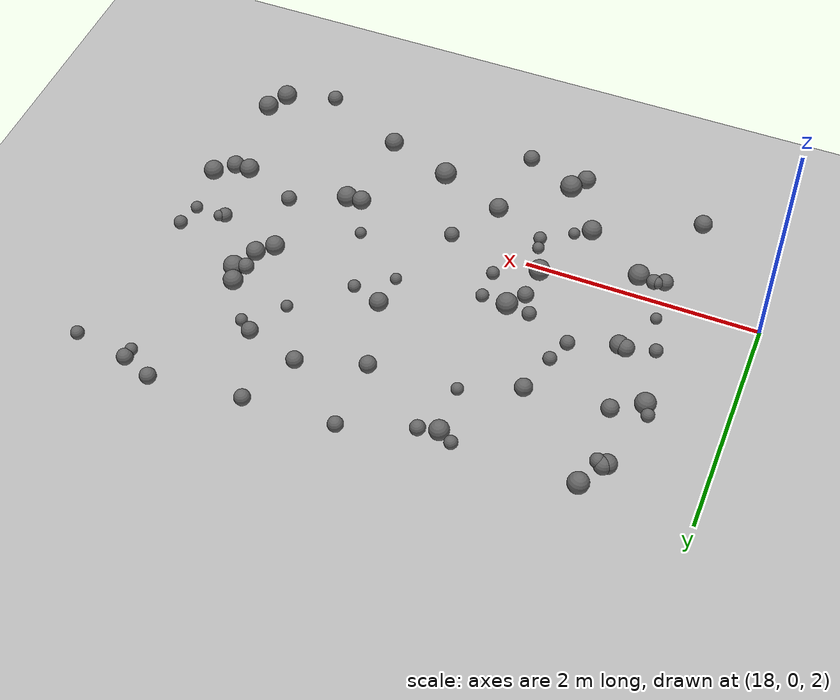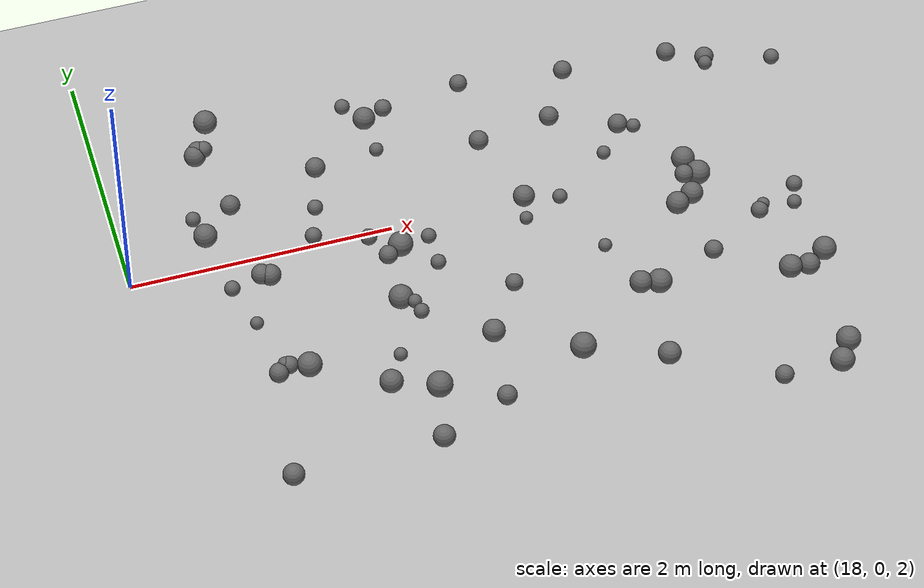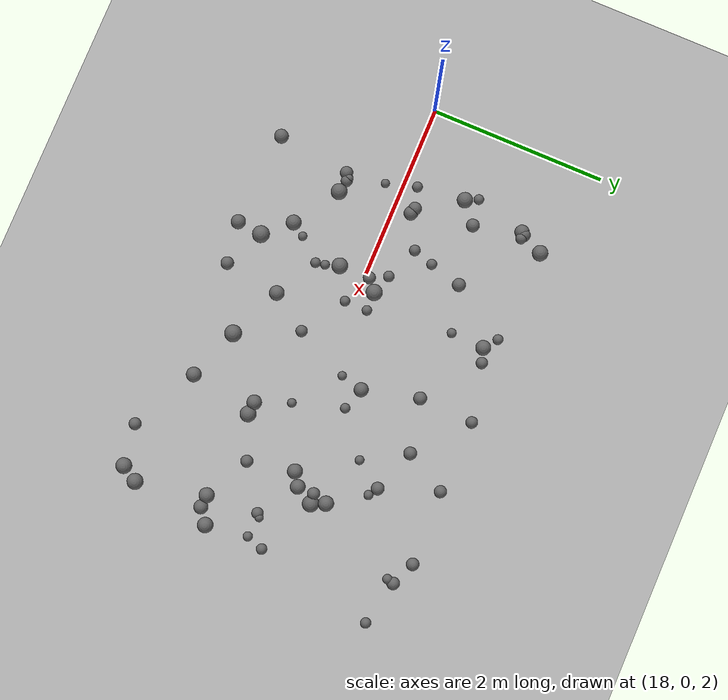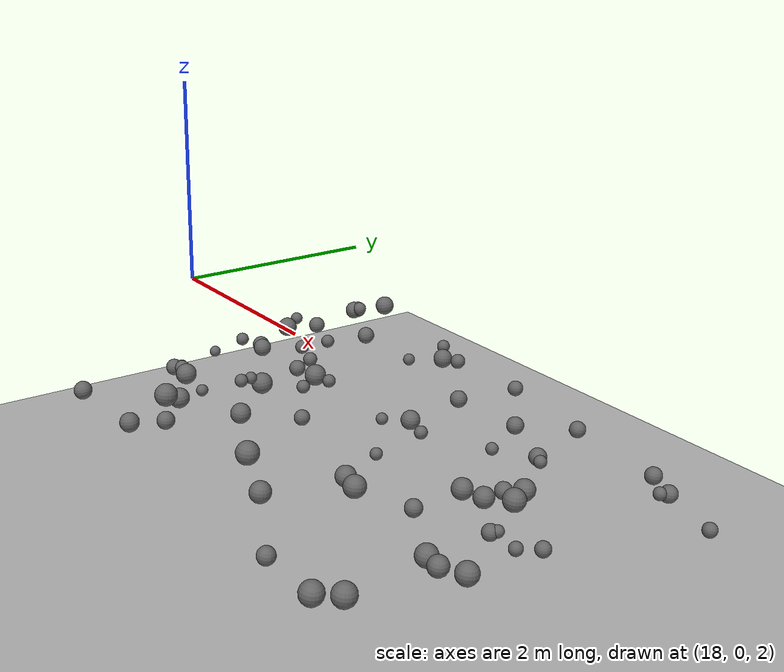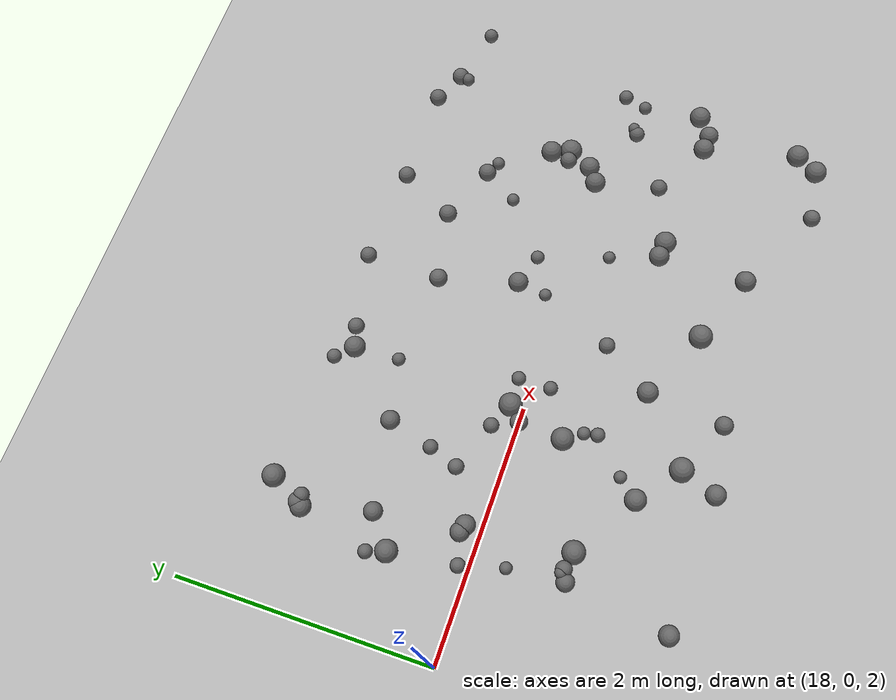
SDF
<sdf version="1.8">
 <world name="extreme_disturbance_parkour">
  <model name="ground_plane">
   <static>true</static>
   <link name="link">
    <collision name="collision">
     <geometry><plane><normal>0 0 1</normal><size>100 100</size></plane></geometry>
     <surface><friction><ode><mu>1.5</mu><mu2>1.5</mu2></ode></friction></surface>
    </collision>
    <visual name="visual">
     <geometry><plane><normal>0 0 1</normal><size>100 100</size></plane></geometry>
     <material><ambient>0.7 0.7 0.7 1</ambient><diffuse>0.7 0.7 0.7 1</diffuse></material>
    </visual>
   </link>
  </model>
  <model name="stone_120">
   <static>true</static>
   <pose>18.8394 1.4577 1.6213 0.0700 -0.1000 0.0000</pose>
   <link name="link">
    <collision name="collision">
     <geometry><sphere><radius>0.0782</radius></sphere></geometry>
     <surface><friction><ode><mu>100.0</mu><mu2>100.0</mu2></ode></friction></surface>
    </collision>
    <visual name="visual">
     <geometry><sphere><radius>0.0782</radius></sphere></geometry>
     <material><ambient>0.3 0.3 0.3 1</ambient><diffuse>0.4 0.4 0.4 1</diffuse></material>
    </visual>
   </link>
  </model>
  <model name="stone_123">
   <static>true</static>
   <pose>19.0907 0.1744 1.5520 0.0700 -0.1000 0.0000</pose>
   <link name="link">
    <collision name="collision">
     <geometry><sphere><radius>0.0824</radius></sphere></geometry>
     <surface><friction><ode><mu>100.0</mu><mu2>100.0</mu2></ode></friction></surface>
    </collision>
    <visual name="visual">
     <geometry><sphere><radius>0.0824</radius></sphere></geometry>
     <material><ambient>0.3 0.3 0.3 1</ambient><diffuse>0.4 0.4 0.4 1</diffuse></material>
    </visual>
   </link>
  </model>
  <model name="stone_127">
   <static>true</static>
   <pose>19.6629 0.9989 1.6807 0.0700 -0.1000 0.0000</pose>
   <link name="link">
    <collision name="collision">
     <geometry><sphere><radius>0.0776</radius></sphere></geometry>
     <surface><friction><ode><mu>100.0</mu><mu2>100.0</mu2></ode></friction></surface>
    </collision>
    <visual name="visual">
     <geometry><sphere><radius>0.0776</radius></sphere></geometry>
     <material><ambient>0.3 0.3 0.3 1</ambient><diffuse>0.4 0.4 0.4 1</diffuse></material>
    </visual>
   </link>
  </model>
  <model name="stone_135">
   <static>true</static>
   <pose>19.0219 -0.6539 1.5021 0.0700 -0.1000 0.0000</pose>
   <link name="link">
    <collision name="collision">
     <geometry><sphere><radius>0.0679</radius></sphere></geometry>
     <surface><friction><ode><mu>100.0</mu><mu2>100.0</mu2></ode></friction></surface>
    </collision>
    <visual name="visual">
     <geometry><sphere><radius>0.0679</radius></sphere></geometry>
     <material><ambient>0.3 0.3 0.3 1</ambient><diffuse>0.4 0.4 0.4 1</diffuse></material>
    </visual>
   </link>
  </model>
  <model name="stone_140">
   <static>true</static>
   <pose>19.0270 0.1959 1.5583 0.0700 -0.1000 0.0000</pose>
   <link name="link">
    <collision name="collision">
     <geometry><sphere><radius>0.0781</radius></sphere></geometry>
     <surface><friction><ode><mu>100.0</mu><mu2>100.0</mu2></ode></friction></surface>
    </collision>
    <visual name="visual">
     <geometry><sphere><radius>0.0781</radius></sphere></geometry>
     <material><ambient>0.3 0.3 0.3 1</ambient><diffuse>0.4 0.4 0.4 1</diffuse></material>
    </visual>
   </link>
  </model>
  <model name="stone_143">
   <static>true</static>
   <pose>18.8889 1.4457 1.6440 0.0700 -0.1000 0.0000</pose>
   <link name="link">
    <collision name="collision">
     <geometry><sphere><radius>0.0643</radius></sphere></geometry>
     <surface><friction><ode><mu>100.0</mu><mu2>100.0</mu2></ode></friction></surface>
    </collision>
    <visual name="visual">
     <geometry><sphere><radius>0.0643</radius></sphere></geometry>
     <material><ambient>0.3 0.3 0.3 1</ambient><diffuse>0.4 0.4 0.4 1</diffuse></material>
    </visual>
   </link>
  </model>
  <model name="stone_152">
   <static>true</static>
   <pose>18.9634 1.7077 1.6505 0.0700 -0.1000 0.0000</pose>
   <link name="link">
    <collision name="collision">
     <geometry><sphere><radius>0.0919</radius></sphere></geometry>
     <surface><friction><ode><mu>100.0</mu><mu2>100.0</mu2></ode></friction></surface>
    </collision>
    <visual name="visual">
     <geometry><sphere><radius>0.0919</radius></sphere></geometry>
     <material><ambient>0.3 0.3 0.3 1</ambient><diffuse>0.4 0.4 0.4 1</diffuse></material>
    </visual>
   </link>
  </model>
  <model name="stone_159">
   <static>true</static>
   <pose>18.7815 0.1254 1.5538 0.0700 -0.1000 0.0000</pose>
   <link name="link">
    <collision name="collision">
     <geometry><sphere><radius>0.0605</radius></sphere></geometry>
     <surface><friction><ode><mu>100.0</mu><mu2>100.0</mu2></ode></friction></surface>
    </collision>
    <visual name="visual">
     <geometry><sphere><radius>0.0605</radius></sphere></geometry>
     <material><ambient>0.3 0.3 0.3 1</ambient><diffuse>0.4 0.4 0.4 1</diffuse></material>
    </visual>
   </link>
  </model>
  <model name="stone_161">
   <static>true</static>
   <pose>18.8143 -1.5651 1.4147 0.0700 -0.1000 0.0000</pose>
   <link name="link">
    <collision name="collision">
     <geometry><sphere><radius>0.0837</radius></sphere></geometry>
     <surface><friction><ode><mu>100.0</mu><mu2>100.0</mu2></ode></friction></surface>
    </collision>
    <visual name="visual">
     <geometry><sphere><radius>0.0837</radius></sphere></geometry>
     <material><ambient>0.3 0.3 0.3 1</ambient><diffuse>0.4 0.4 0.4 1</diffuse></material>
    </visual>
   </link>
  </model>
  <model name="stone_162">
   <static>true</static>
   <pose>18.8114 1.4268 1.6117 0.0700 -0.1000 0.0000</pose>
   <link name="link">
    <collision name="collision">
     <geometry><sphere><radius>0.0844</radius></sphere></geometry>
     <surface><friction><ode><mu>100.0</mu><mu2>100.0</mu2></ode></friction></surface>
    </collision>
    <visual name="visual">
     <geometry><sphere><radius>0.0844</radius></sphere></geometry>
     <material><ambient>0.3 0.3 0.3 1</ambient><diffuse>0.4 0.4 0.4 1</diffuse></material>
    </visual>
   </link>
  </model>
  <model name="stone_163">
   <static>true</static>
   <pose>18.9894 -0.6428 1.5135 0.0700 -0.1000 0.0000</pose>
   <link name="link">
    <collision name="collision">
     <geometry><sphere><radius>0.0533</radius></sphere></geometry>
     <surface><friction><ode><mu>100.0</mu><mu2>100.0</mu2></ode></friction></surface>
    </collision>
    <visual name="visual">
     <geometry><sphere><radius>0.0533</radius></sphere></geometry>
     <material><ambient>0.3 0.3 0.3 1</ambient><diffuse>0.4 0.4 0.4 1</diffuse></material>
    </visual>
   </link>
  </model>
  <model name="stone_164">
   <static>true</static>
   <pose>18.8824 -0.2306 1.5335 0.0700 -0.1000 0.0000</pose>
   <link name="link">
    <collision name="collision">
     <geometry><sphere><radius>0.0508</radius></sphere></geometry>
     <surface><friction><ode><mu>100.0</mu><mu2>100.0</mu2></ode></friction></surface>
    </collision>
    <visual name="visual">
     <geometry><sphere><radius>0.0508</radius></sphere></geometry>
     <material><ambient>0.3 0.3 0.3 1</ambient><diffuse>0.4 0.4 0.4 1</diffuse></material>
    </visual>
   </link>
  </model>
  <model name="stone_175">
   <static>true</static>
   <pose>19.8795 0.2305 1.6697 0.0700 -0.1000 0.0000</pose>
   <link name="link">
    <collision name="collision">
     <geometry><sphere><radius>0.0635</radius></sphere></geometry>
     <surface><friction><ode><mu>100.0</mu><mu2>100.0</mu2></ode></friction></surface>
    </collision>
    <visual name="visual">
     <geometry><sphere><radius>0.0635</radius></sphere></geometry>
     <material><ambient>0.3 0.3 0.3 1</ambient><diffuse>0.4 0.4 0.4 1</diffuse></material>
    </visual>
   </link>
  </model>
  <model name="stone_185">
   <static>true</static>
   <pose>19.1689 -0.6874 1.4973 0.0700 -0.1000 0.0000</pose>
   <link name="link">
    <collision name="collision">
     <geometry><sphere><radius>0.0951</radius></sphere></geometry>
     <surface><friction><ode><mu>100.0</mu><mu2>100.0</mu2></ode></friction></surface>
    </collision>
    <visual name="visual">
     <geometry><sphere><radius>0.0951</radius></sphere></geometry>
     <material><ambient>0.3 0.3 0.3 1</ambient><diffuse>0.4 0.4 0.4 1</diffuse></material>
    </visual>
   </link>
  </model>
  <model name="stone_188">
   <static>true</static>
   <pose>19.8249 -0.8573 1.5958 0.0700 -0.1000 0.0000</pose>
   <link name="link">
    <collision name="collision">
     <geometry><sphere><radius>0.0520</radius></sphere></geometry>
     <surface><friction><ode><mu>100.0</mu><mu2>100.0</mu2></ode></friction></surface>
    </collision>
    <visual name="visual">
     <geometry><sphere><radius>0.0520</radius></sphere></geometry>
     <material><ambient>0.3 0.3 0.3 1</ambient><diffuse>0.4 0.4 0.4 1</diffuse></material>
    </visual>
   </link>
  </model>
  <model name="stone_190">
   <static>true</static>
   <pose>18.9563 0.8815 1.6017 0.0700 -0.1000 0.0000</pose>
   <link name="link">
    <collision name="collision">
     <geometry><sphere><radius>0.0768</radius></sphere></geometry>
     <surface><friction><ode><mu>100.0</mu><mu2>100.0</mu2></ode></friction></surface>
    </collision>
    <visual name="visual">
     <geometry><sphere><radius>0.0768</radius></sphere></geometry>
     <material><ambient>0.3 0.3 0.3 1</ambient><diffuse>0.4 0.4 0.4 1</diffuse></material>
    </visual>
   </link>
  </model>
  <model name="stone_193">
   <static>true</static>
   <pose>19.7071 -1.0234 1.5214 0.0700 -0.1000 0.0000</pose>
   <link name="link">
    <collision name="collision">
     <geometry><sphere><radius>0.0896</radius></sphere></geometry>
     <surface><friction><ode><mu>100.0</mu><mu2>100.0</mu2></ode></friction></surface>
    </collision>
    <visual name="visual">
     <geometry><sphere><radius>0.0896</radius></sphere></geometry>
     <material><ambient>0.3 0.3 0.3 1</ambient><diffuse>0.4 0.4 0.4 1</diffuse></material>
    </visual>
   </link>
  </model>
  <model name="stone_197">
   <static>true</static>
   <pose>18.9321 -0.6943 1.4896 0.0700 -0.1000 0.0000</pose>
   <link name="link">
    <collision name="collision">
     <geometry><sphere><radius>0.0754</radius></sphere></geometry>
     <surface><friction><ode><mu>100.0</mu><mu2>100.0</mu2></ode></friction></surface>
    </collision>
    <visual name="visual">
     <geometry><sphere><radius>0.0754</radius></sphere></geometry>
     <material><ambient>0.3 0.3 0.3 1</ambient><diffuse>0.4 0.4 0.4 1</diffuse></material>
    </visual>
   </link>
  </model>
  <model name="stone_204">
   <static>true</static>
   <pose>19.4852 0.3855 1.6361 0.0700 -0.1000 0.0000</pose>
   <link name="link">
    <collision name="collision">
     <geometry><sphere><radius>0.0642</radius></sphere></geometry>
     <surface><friction><ode><mu>100.0</mu><mu2>100.0</mu2></ode></friction></surface>
    </collision>
    <visual name="visual">
     <geometry><sphere><radius>0.0642</radius></sphere></geometry>
     <material><ambient>0.3 0.3 0.3 1</ambient><diffuse>0.4 0.4 0.4 1</diffuse></material>
    </visual>
   </link>
  </model>
  <model name="stone_205">
   <static>true</static>
   <pose>18.6505 0.8301 1.5921 0.0700 -0.1000 0.0000</pose>
   <link name="link">
    <collision name="collision">
     <geometry><sphere><radius>0.0587</radius></sphere></geometry>
     <surface><friction><ode><mu>100.0</mu><mu2>100.0</mu2></ode></friction></surface>
    </collision>
    <visual name="visual">
     <geometry><sphere><radius>0.0587</radius></sphere></geometry>
     <material><ambient>0.3 0.3 0.3 1</ambient><diffuse>0.4 0.4 0.4 1</diffuse></material>
    </visual>
   </link>
  </model>
  <model name="stone_210">
   <static>true</static>
   <pose>19.5627 0.6245 1.6672 0.0700 -0.1000 0.0000</pose>
   <link name="link">
    <collision name="collision">
     <geometry><sphere><radius>0.0602</radius></sphere></geometry>
     <surface><friction><ode><mu>100.0</mu><mu2>100.0</mu2></ode></friction></surface>
    </collision>
    <visual name="visual">
     <geometry><sphere><radius>0.0602</radius></sphere></geometry>
     <material><ambient>0.3 0.3 0.3 1</ambient><diffuse>0.4 0.4 0.4 1</diffuse></material>
    </visual>
   </link>
  </model>
  <model name="stone_222">
   <static>true</static>
   <pose>18.7094 0.6847 1.5481 0.0700 -0.1000 0.0000</pose>
   <link name="link">
    <collision name="collision">
     <geometry><sphere><radius>0.0917</radius></sphere></geometry>
     <surface><friction><ode><mu>100.0</mu><mu2>100.0</mu2></ode></friction></surface>
    </collision>
    <visual name="visual">
     <geometry><sphere><radius>0.0917</radius></sphere></geometry>
     <material><ambient>0.3 0.3 0.3 1</ambient><diffuse>0.4 0.4 0.4 1</diffuse></material>
    </visual>
   </link>
  </model>
  <model name="stone_224">
   <static>true</static>
   <pose>19.9453 -1.6108 1.5200 0.0700 -0.1000 0.0000</pose>
   <link name="link">
    <collision name="collision">
     <geometry><sphere><radius>0.0849</radius></sphere></geometry>
     <surface><friction><ode><mu>100.0</mu><mu2>100.0</mu2></ode></friction></surface>
    </collision>
    <visual name="visual">
     <geometry><sphere><radius>0.0849</radius></sphere></geometry>
     <material><ambient>0.3 0.3 0.3 1</ambient><diffuse>0.4 0.4 0.4 1</diffuse></material>
    </visual>
   </link>
  </model>
  <model name="stone_237">
   <static>true</static>
   <pose>19.9737 -0.3345 1.5946 0.0700 -0.1000 0.0000</pose>
   <link name="link">
    <collision name="collision">
     <geometry><sphere><radius>0.0936</radius></sphere></geometry>
     <surface><friction><ode><mu>100.0</mu><mu2>100.0</mu2></ode></friction></surface>
    </collision>
    <visual name="visual">
     <geometry><sphere><radius>0.0936</radius></sphere></geometry>
     <material><ambient>0.3 0.3 0.3 1</ambient><diffuse>0.4 0.4 0.4 1</diffuse></material>
    </visual>
   </link>
  </model>
  <model name="stone_240">
   <static>true</static>
   <pose>20.1858 1.1346 1.5693 -0.0700 0.1000 0.0000</pose>
   <link name="link">
    <collision name="collision">
     <geometry><sphere><radius>0.0547</radius></sphere></geometry>
     <surface><friction><ode><mu>100.0</mu><mu2>100.0</mu2></ode></friction></surface>
    </collision>
    <visual name="visual">
     <geometry><sphere><radius>0.0547</radius></sphere></geometry>
     <material><ambient>0.3 0.3 0.3 1</ambient><diffuse>0.4 0.4 0.4 1</diffuse></material>
    </visual>
   </link>
  </model>
  <model name="stone_241">
   <static>true</static>
   <pose>23.2015 -0.1022 1.3538 -0.0700 0.1000 0.0000</pose>
   <link name="link">
    <collision name="collision">
     <geometry><sphere><radius>0.0564</radius></sphere></geometry>
     <surface><friction><ode><mu>100.0</mu><mu2>100.0</mu2></ode></friction></surface>
    </collision>
    <visual name="visual">
     <geometry><sphere><radius>0.0564</radius></sphere></geometry>
     <material><ambient>0.3 0.3 0.3 1</ambient><diffuse>0.4 0.4 0.4 1</diffuse></material>
    </visual>
   </link>
  </model>
  <model name="stone_242">
   <static>true</static>
   <pose>21.9255 -0.6394 1.4697 -0.0700 0.1000 0.0000</pose>
   <link name="link">
    <collision name="collision">
     <geometry><sphere><radius>0.0941</radius></sphere></geometry>
     <surface><friction><ode><mu>100.0</mu><mu2>100.0</mu2></ode></friction></surface>
    </collision>
    <visual name="visual">
     <geometry><sphere><radius>0.0941</radius></sphere></geometry>
     <material><ambient>0.3 0.3 0.3 1</ambient><diffuse>0.4 0.4 0.4 1</diffuse></material>
    </visual>
   </link>
  </model>
  <model name="stone_249">
   <static>true</static>
   <pose>22.4670 0.3961 1.3667 -0.0700 0.1000 0.0000</pose>
   <link name="link">
    <collision name="collision">
     <geometry><sphere><radius>0.0733</radius></sphere></geometry>
     <surface><friction><ode><mu>100.0</mu><mu2>100.0</mu2></ode></friction></surface>
    </collision>
    <visual name="visual">
     <geometry><sphere><radius>0.0733</radius></sphere></geometry>
     <material><ambient>0.3 0.3 0.3 1</ambient><diffuse>0.4 0.4 0.4 1</diffuse></material>
    </visual>
   </link>
  </model>
  <model name="stone_257">
   <static>true</static>
   <pose>21.7567 -1.3741 1.5591 -0.0700 0.1000 0.0000</pose>
   <link name="link">
    <collision name="collision">
     <geometry><sphere><radius>0.0871</radius></sphere></geometry>
     <surface><friction><ode><mu>100.0</mu><mu2>100.0</mu2></ode></friction></surface>
    </collision>
    <visual name="visual">
     <geometry><sphere><radius>0.0871</radius></sphere></geometry>
     <material><ambient>0.3 0.3 0.3 1</ambient><diffuse>0.4 0.4 0.4 1</diffuse></material>
    </visual>
   </link>
  </model>
  <model name="stone_258">
   <static>true</static>
   <pose>22.4654 0.1993 1.3642 -0.0700 0.1000 0.0000</pose>
   <link name="link">
    <collision name="collision">
     <geometry><sphere><radius>0.0874</radius></sphere></geometry>
     <surface><friction><ode><mu>100.0</mu><mu2>100.0</mu2></ode></friction></surface>
    </collision>
    <visual name="visual">
     <geometry><sphere><radius>0.0874</radius></sphere></geometry>
     <material><ambient>0.3 0.3 0.3 1</ambient><diffuse>0.4 0.4 0.4 1</diffuse></material>
    </visual>
   </link>
  </model>
  <model name="stone_259">
   <static>true</static>
   <pose>21.0015 1.0922 1.4620 -0.0700 0.1000 0.0000</pose>
   <link name="link">
    <collision name="collision">
     <geometry><sphere><radius>0.0771</radius></sphere></geometry>
     <surface><friction><ode><mu>100.0</mu><mu2>100.0</mu2></ode></friction></surface>
    </collision>
    <visual name="visual">
     <geometry><sphere><radius>0.0771</radius></sphere></geometry>
     <material><ambient>0.3 0.3 0.3 1</ambient><diffuse>0.4 0.4 0.4 1</diffuse></material>
    </visual>
   </link>
  </model>
  <model name="stone_260">
   <static>true</static>
   <pose>22.3162 0.1035 1.4028 -0.0700 0.1000 0.0000</pose>
   <link name="link">
    <collision name="collision">
     <geometry><sphere><radius>0.0886</radius></sphere></geometry>
     <surface><friction><ode><mu>100.0</mu><mu2>100.0</mu2></ode></friction></surface>
    </collision>
    <visual name="visual">
     <geometry><sphere><radius>0.0886</radius></sphere></geometry>
     <material><ambient>0.3 0.3 0.3 1</ambient><diffuse>0.4 0.4 0.4 1</diffuse></material>
    </visual>
   </link>
  </model>
  <model name="stone_261">
   <static>true</static>
   <pose>21.6193 -0.2279 1.5149 -0.0700 0.1000 0.0000</pose>
   <link name="link">
    <collision name="collision">
     <geometry><sphere><radius>0.0524</radius></sphere></geometry>
     <surface><friction><ode><mu>100.0</mu><mu2>100.0</mu2></ode></friction></surface>
    </collision>
    <visual name="visual">
     <geometry><sphere><radius>0.0524</radius></sphere></geometry>
     <material><ambient>0.3 0.3 0.3 1</ambient><diffuse>0.4 0.4 0.4 1</diffuse></material>
    </visual>
   </link>
  </model>
  <model name="stone_264">
   <static>true</static>
   <pose>20.5436 -0.8669 1.6375 -0.0700 0.1000 0.0000</pose>
   <link name="link">
    <collision name="collision">
     <geometry><sphere><radius>0.0866</radius></sphere></geometry>
     <surface><friction><ode><mu>100.0</mu><mu2>100.0</mu2></ode></friction></surface>
    </collision>
    <visual name="visual">
     <geometry><sphere><radius>0.0866</radius></sphere></geometry>
     <material><ambient>0.3 0.3 0.3 1</ambient><diffuse>0.4 0.4 0.4 1</diffuse></material>
    </visual>
   </link>
  </model>
  <model name="stone_265">
   <static>true</static>
   <pose>20.3282 0.1501 1.6241 -0.0700 0.1000 0.0000</pose>
   <link name="link">
    <collision name="collision">
     <geometry><sphere><radius>0.0581</radius></sphere></geometry>
     <surface><friction><ode><mu>100.0</mu><mu2>100.0</mu2></ode></friction></surface>
    </collision>
    <visual name="visual">
     <geometry><sphere><radius>0.0581</radius></sphere></geometry>
     <material><ambient>0.3 0.3 0.3 1</ambient><diffuse>0.4 0.4 0.4 1</diffuse></material>
    </visual>
   </link>
  </model>
  <model name="stone_267">
   <static>true</static>
   <pose>23.0303 1.5447 1.2489 -0.0700 0.1000 0.0000</pose>
   <link name="link">
    <collision name="collision">
     <geometry><sphere><radius>0.0573</radius></sphere></geometry>
     <surface><friction><ode><mu>100.0</mu><mu2>100.0</mu2></ode></friction></surface>
    </collision>
    <visual name="visual">
     <geometry><sphere><radius>0.0573</radius></sphere></geometry>
     <material><ambient>0.3 0.3 0.3 1</ambient><diffuse>0.4 0.4 0.4 1</diffuse></material>
    </visual>
   </link>
  </model>
  <model name="stone_268">
   <static>true</static>
   <pose>21.6194 1.2306 1.3984 -0.0700 0.1000 0.0000</pose>
   <link name="link">
    <collision name="collision">
     <geometry><sphere><radius>0.0766</radius></sphere></geometry>
     <surface><friction><ode><mu>100.0</mu><mu2>100.0</mu2></ode></friction></surface>
    </collision>
    <visual name="visual">
     <geometry><sphere><radius>0.0766</radius></sphere></geometry>
     <material><ambient>0.3 0.3 0.3 1</ambient><diffuse>0.4 0.4 0.4 1</diffuse></material>
    </visual>
   </link>
  </model>
  <model name="stone_269">
   <static>true</static>
   <pose>22.5848 0.4078 1.3323 -0.0700 0.1000 0.0000</pose>
   <link name="link">
    <collision name="collision">
     <geometry><sphere><radius>0.0971</radius></sphere></geometry>
     <surface><friction><ode><mu>100.0</mu><mu2>100.0</mu2></ode></friction></surface>
    </collision>
    <visual name="visual">
     <geometry><sphere><radius>0.0971</radius></sphere></geometry>
     <material><ambient>0.3 0.3 0.3 1</ambient><diffuse>0.4 0.4 0.4 1</diffuse></material>
    </visual>
   </link>
  </model>
  <model name="stone_271">
   <static>true</static>
   <pose>23.1021 -0.7239 1.3683 -0.0700 0.1000 0.0000</pose>
   <link name="link">
    <collision name="collision">
     <geometry><sphere><radius>0.0835</radius></sphere></geometry>
     <surface><friction><ode><mu>100.0</mu><mu2>100.0</mu2></ode></friction></surface>
    </collision>
    <visual name="visual">
     <geometry><sphere><radius>0.0835</radius></sphere></geometry>
     <material><ambient>0.3 0.3 0.3 1</ambient><diffuse>0.4 0.4 0.4 1</diffuse></material>
    </visual>
   </link>
  </model>
  <model name="stone_274">
   <static>true</static>
   <pose>20.3614 1.5819 1.5088 -0.0700 0.1000 0.0000</pose>
   <link name="link">
    <collision name="collision">
     <geometry><sphere><radius>0.0683</radius></sphere></geometry>
     <surface><friction><ode><mu>100.0</mu><mu2>100.0</mu2></ode></friction></surface>
    </collision>
    <visual name="visual">
     <geometry><sphere><radius>0.0683</radius></sphere></geometry>
     <material><ambient>0.3 0.3 0.3 1</ambient><diffuse>0.4 0.4 0.4 1</diffuse></material>
    </visual>
   </link>
  </model>
  <model name="stone_276">
   <static>true</static>
   <pose>20.0414 -0.4838 1.7010 -0.0700 0.1000 0.0000</pose>
   <link name="link">
    <collision name="collision">
     <geometry><sphere><radius>0.0530</radius></sphere></geometry>
     <surface><friction><ode><mu>100.0</mu><mu2>100.0</mu2></ode></friction></surface>
    </collision>
    <visual name="visual">
     <geometry><sphere><radius>0.0530</radius></sphere></geometry>
     <material><ambient>0.3 0.3 0.3 1</ambient><diffuse>0.4 0.4 0.4 1</diffuse></material>
    </visual>
   </link>
  </model>
  <model name="stone_284">
   <static>true</static>
   <pose>21.1732 0.4363 1.4838 -0.0700 0.1000 0.0000</pose>
   <link name="link">
    <collision name="collision">
     <geometry><sphere><radius>0.0840</radius></sphere></geometry>
     <surface><friction><ode><mu>100.0</mu><mu2>100.0</mu2></ode></friction></surface>
    </collision>
    <visual name="visual">
     <geometry><sphere><radius>0.0840</radius></sphere></geometry>
     <material><ambient>0.3 0.3 0.3 1</ambient><diffuse>0.4 0.4 0.4 1</diffuse></material>
    </visual>
   </link>
  </model>
  <model name="stone_290">
   <static>true</static>
   <pose>21.0232 1.7387 1.4218 -0.0700 0.1000 0.0000</pose>
   <link name="link">
    <collision name="collision">
     <geometry><sphere><radius>0.0699</radius></sphere></geometry>
     <surface><friction><ode><mu>100.0</mu><mu2>100.0</mu2></ode></friction></surface>
    </collision>
    <visual name="visual">
     <geometry><sphere><radius>0.0699</radius></sphere></geometry>
     <material><ambient>0.3 0.3 0.3 1</ambient><diffuse>0.4 0.4 0.4 1</diffuse></material>
    </visual>
   </link>
  </model>
  <model name="stone_294">
   <static>true</static>
   <pose>20.1930 1.5303 1.4965 -0.0700 0.1000 0.0000</pose>
   <link name="link">
    <collision name="collision">
     <geometry><sphere><radius>0.0884</radius></sphere></geometry>
     <surface><friction><ode><mu>100.0</mu><mu2>100.0</mu2></ode></friction></surface>
    </collision>
    <visual name="visual">
     <geometry><sphere><radius>0.0884</radius></sphere></geometry>
     <material><ambient>0.3 0.3 0.3 1</ambient><diffuse>0.4 0.4 0.4 1</diffuse></material>
    </visual>
   </link>
  </model>
  <model name="stone_295">
   <static>true</static>
   <pose>22.4230 -0.4423 1.4427 -0.0700 0.1000 0.0000</pose>
   <link name="link">
    <collision name="collision">
     <geometry><sphere><radius>0.0720</radius></sphere></geometry>
     <surface><friction><ode><mu>100.0</mu><mu2>100.0</mu2></ode></friction></surface>
    </collision>
    <visual name="visual">
     <geometry><sphere><radius>0.0720</radius></sphere></geometry>
     <material><ambient>0.3 0.3 0.3 1</ambient><diffuse>0.4 0.4 0.4 1</diffuse></material>
    </visual>
   </link>
  </model>
  <model name="stone_297">
   <static>true</static>
   <pose>20.3280 -0.1193 1.6309 -0.0700 0.1000 0.0000</pose>
   <link name="link">
    <collision name="collision">
     <geometry><sphere><radius>0.0585</radius></sphere></geometry>
     <surface><friction><ode><mu>100.0</mu><mu2>100.0</mu2></ode></friction></surface>
    </collision>
    <visual name="visual">
     <geometry><sphere><radius>0.0585</radius></sphere></geometry>
     <material><ambient>0.3 0.3 0.3 1</ambient><diffuse>0.4 0.4 0.4 1</diffuse></material>
    </visual>
   </link>
  </model>
  <model name="stone_298">
   <static>true</static>
   <pose>21.1143 0.1788 1.5370 -0.0700 0.1000 0.0000</pose>
   <link name="link">
    <collision name="collision">
     <geometry><sphere><radius>0.0515</radius></sphere></geometry>
     <surface><friction><ode><mu>100.0</mu><mu2>100.0</mu2></ode></friction></surface>
    </collision>
    <visual name="visual">
     <geometry><sphere><radius>0.0515</radius></sphere></geometry>
     <material><ambient>0.3 0.3 0.3 1</ambient><diffuse>0.4 0.4 0.4 1</diffuse></material>
    </visual>
   </link>
  </model>
  <model name="stone_303">
   <static>true</static>
   <pose>23.0118 -1.7067 1.4413 -0.0700 0.1000 0.0000</pose>
   <link name="link">
    <collision name="collision">
     <geometry><sphere><radius>0.0935</radius></sphere></geometry>
     <surface><friction><ode><mu>100.0</mu><mu2>100.0</mu2></ode></friction></surface>
    </collision>
    <visual name="visual">
     <geometry><sphere><radius>0.0935</radius></sphere></geometry>
     <material><ambient>0.3 0.3 0.3 1</ambient><diffuse>0.4 0.4 0.4 1</diffuse></material>
    </visual>
   </link>
  </model>
  <model name="stone_304">
   <static>true</static>
   <pose>21.1552 -1.1462 1.5851 -0.0700 0.1000 0.0000</pose>
   <link name="link">
    <collision name="collision">
     <geometry><sphere><radius>0.0992</radius></sphere></geometry>
     <surface><friction><ode><mu>100.0</mu><mu2>100.0</mu2></ode></friction></surface>
    </collision>
    <visual name="visual">
     <geometry><sphere><radius>0.0992</radius></sphere></geometry>
     <material><ambient>0.3 0.3 0.3 1</ambient><diffuse>0.4 0.4 0.4 1</diffuse></material>
    </visual>
   </link>
  </model>
  <model name="stone_305">
   <static>true</static>
   <pose>22.1298 1.0438 1.3510 -0.0700 0.1000 0.0000</pose>
   <link name="link">
    <collision name="collision">
     <geometry><sphere><radius>0.0766</radius></sphere></geometry>
     <surface><friction><ode><mu>100.0</mu><mu2>100.0</mu2></ode></friction></surface>
    </collision>
    <visual name="visual">
     <geometry><sphere><radius>0.0766</radius></sphere></geometry>
     <material><ambient>0.3 0.3 0.3 1</ambient><diffuse>0.4 0.4 0.4 1</diffuse></material>
    </visual>
   </link>
  </model>
  <model name="stone_306">
   <static>true</static>
   <pose>20.0038 -1.2889 1.7157 -0.0700 0.1000 0.0000</pose>
   <link name="link">
    <collision name="collision">
     <geometry><sphere><radius>0.0989</radius></sphere></geometry>
     <surface><friction><ode><mu>100.0</mu><mu2>100.0</mu2></ode></friction></surface>
    </collision>
    <visual name="visual">
     <geometry><sphere><radius>0.0989</radius></sphere></geometry>
     <material><ambient>0.3 0.3 0.3 1</ambient><diffuse>0.4 0.4 0.4 1</diffuse></material>
    </visual>
   </link>
  </model>
  <model name="stone_311">
   <static>true</static>
   <pose>23.2716 -0.5991 1.3503 -0.0700 0.1000 0.0000</pose>
   <link name="link">
    <collision name="collision">
     <geometry><sphere><radius>0.0917</radius></sphere></geometry>
     <surface><friction><ode><mu>100.0</mu><mu2>100.0</mu2></ode></friction></surface>
    </collision>
    <visual name="visual">
     <geometry><sphere><radius>0.0917</radius></sphere></geometry>
     <material><ambient>0.3 0.3 0.3 1</ambient><diffuse>0.4 0.4 0.4 1</diffuse></material>
    </visual>
   </link>
  </model>
  <model name="stone_314">
   <static>true</static>
   <pose>22.7658 1.7458 1.2444 -0.0700 0.1000 0.0000</pose>
   <link name="link">
    <collision name="collision">
     <geometry><sphere><radius>0.0752</radius></sphere></geometry>
     <surface><friction><ode><mu>100.0</mu><mu2>100.0</mu2></ode></friction></surface>
    </collision>
    <visual name="visual">
     <geometry><sphere><radius>0.0752</radius></sphere></geometry>
     <material><ambient>0.3 0.3 0.3 1</ambient><diffuse>0.4 0.4 0.4 1</diffuse></material>
    </visual>
   </link>
  </model>
  <model name="stone_316">
   <static>true</static>
   <pose>21.4379 0.3521 1.4870 -0.0700 0.1000 0.0000</pose>
   <link name="link">
    <collision name="collision">
     <geometry><sphere><radius>0.0574</radius></sphere></geometry>
     <surface><friction><ode><mu>100.0</mu><mu2>100.0</mu2></ode></friction></surface>
    </collision>
    <visual name="visual">
     <geometry><sphere><radius>0.0574</radius></sphere></geometry>
     <material><ambient>0.3 0.3 0.3 1</ambient><diffuse>0.4 0.4 0.4 1</diffuse></material>
    </visual>
   </link>
  </model>
  <model name="stone_317">
   <static>true</static>
   <pose>23.0507 1.6253 1.2324 -0.0700 0.1000 0.0000</pose>
   <link name="link">
    <collision name="collision">
     <geometry><sphere><radius>0.0758</radius></sphere></geometry>
     <surface><friction><ode><mu>100.0</mu><mu2>100.0</mu2></ode></friction></surface>
    </collision>
    <visual name="visual">
     <geometry><sphere><radius>0.0758</radius></sphere></geometry>
     <material><ambient>0.3 0.3 0.3 1</ambient><diffuse>0.4 0.4 0.4 1</diffuse></material>
    </visual>
   </link>
  </model>
  <model name="stone_318">
   <static>true</static>
   <pose>20.0624 -0.5916 1.7067 -0.0700 0.1000 0.0000</pose>
   <link name="link">
    <collision name="collision">
     <geometry><sphere><radius>0.0581</radius></sphere></geometry>
     <surface><friction><ode><mu>100.0</mu><mu2>100.0</mu2></ode></friction></surface>
    </collision>
    <visual name="visual">
     <geometry><sphere><radius>0.0581</radius></sphere></geometry>
     <material><ambient>0.3 0.3 0.3 1</ambient><diffuse>0.4 0.4 0.4 1</diffuse></material>
    </visual>
   </link>
  </model>
  <model name="stone_319">
   <static>true</static>
   <pose>20.0481 1.6471 1.5507 -0.0700 0.1000 0.0000</pose>
   <link name="link">
    <collision name="collision">
     <geometry><sphere><radius>0.0599</radius></sphere></geometry>
     <surface><friction><ode><mu>100.0</mu><mu2>100.0</mu2></ode></friction></surface>
    </collision>
    <visual name="visual">
     <geometry><sphere><radius>0.0599</radius></sphere></geometry>
     <material><ambient>0.3 0.3 0.3 1</ambient><diffuse>0.4 0.4 0.4 1</diffuse></material>
    </visual>
   </link>
  </model>
  <model name="stone_320">
   <static>true</static>
   <pose>21.9143 0.7303 1.4222 -0.0700 0.1000 0.0000</pose>
   <link name="link">
    <collision name="collision">
     <geometry><sphere><radius>0.0538</radius></sphere></geometry>
     <surface><friction><ode><mu>100.0</mu><mu2>100.0</mu2></ode></friction></surface>
    </collision>
    <visual name="visual">
     <geometry><sphere><radius>0.0538</radius></sphere></geometry>
     <material><ambient>0.3 0.3 0.3 1</ambient><diffuse>0.4 0.4 0.4 1</diffuse></material>
    </visual>
   </link>
  </model>
  <model name="stone_321">
   <static>true</static>
   <pose>20.4545 -1.5103 1.6999 -0.0700 0.1000 0.0000</pose>
   <link name="link">
    <collision name="collision">
     <geometry><sphere><radius>0.0749</radius></sphere></geometry>
     <surface><friction><ode><mu>100.0</mu><mu2>100.0</mu2></ode></friction></surface>
    </collision>
    <visual name="visual">
     <geometry><sphere><radius>0.0749</radius></sphere></geometry>
     <material><ambient>0.3 0.3 0.3 1</ambient><diffuse>0.4 0.4 0.4 1</diffuse></material>
    </visual>
   </link>
  </model>
  <model name="stone_322">
   <static>true</static>
   <pose>22.9168 -0.1054 1.3587 -0.0700 0.1000 0.0000</pose>
   <link name="link">
    <collision name="collision">
     <geometry><sphere><radius>0.0677</radius></sphere></geometry>
     <surface><friction><ode><mu>100.0</mu><mu2>100.0</mu2></ode></friction></surface>
    </collision>
    <visual name="visual">
     <geometry><sphere><radius>0.0677</radius></sphere></geometry>
     <material><ambient>0.3 0.3 0.3 1</ambient><diffuse>0.4 0.4 0.4 1</diffuse></material>
    </visual>
   </link>
  </model>
  <model name="stone_327">
   <static>true</static>
   <pose>22.9554 -0.7153 1.3798 -0.0700 0.1000 0.0000</pose>
   <link name="link">
    <collision name="collision">
     <geometry><sphere><radius>0.0902</radius></sphere></geometry>
     <surface><friction><ode><mu>100.0</mu><mu2>100.0</mu2></ode></friction></surface>
    </collision>
    <visual name="visual">
     <geometry><sphere><radius>0.0902</radius></sphere></geometry>
     <material><ambient>0.3 0.3 0.3 1</ambient><diffuse>0.4 0.4 0.4 1</diffuse></material>
    </visual>
   </link>
  </model>
  <model name="stone_328">
   <static>true</static>
   <pose>22.9558 -0.0671 1.3727 -0.0700 0.1000 0.0000</pose>
   <link name="link">
    <collision name="collision">
     <geometry><sphere><radius>0.0505</radius></sphere></geometry>
     <surface><friction><ode><mu>100.0</mu><mu2>100.0</mu2></ode></friction></surface>
    </collision>
    <visual name="visual">
     <geometry><sphere><radius>0.0505</radius></sphere></geometry>
     <material><ambient>0.3 0.3 0.3 1</ambient><diffuse>0.4 0.4 0.4 1</diffuse></material>
    </visual>
   </link>
  </model>
  <model name="stone_334">
   <static>true</static>
   <pose>19.9782 0.0325 1.6584 -0.0700 0.1000 0.0000</pose>
   <link name="link">
    <collision name="collision">
     <geometry><sphere><radius>0.0726</radius></sphere></geometry>
     <surface><friction><ode><mu>100.0</mu><mu2>100.0</mu2></ode></friction></surface>
    </collision>
    <visual name="visual">
     <geometry><sphere><radius>0.0726</radius></sphere></geometry>
     <material><ambient>0.3 0.3 0.3 1</ambient><diffuse>0.4 0.4 0.4 1</diffuse></material>
    </visual>
   </link>
  </model>
  <model name="stone_343">
   <static>true</static>
   <pose>21.7777 -0.6249 1.4931 -0.0700 0.1000 0.0000</pose>
   <link name="link">
    <collision name="collision">
     <geometry><sphere><radius>0.0867</radius></sphere></geometry>
     <surface><friction><ode><mu>100.0</mu><mu2>100.0</mu2></ode></friction></surface>
    </collision>
    <visual name="visual">
     <geometry><sphere><radius>0.0867</radius></sphere></geometry>
     <material><ambient>0.3 0.3 0.3 1</ambient><diffuse>0.4 0.4 0.4 1</diffuse></material>
    </visual>
   </link>
  </model>
  <model name="stone_344">
   <static>true</static>
   <pose>23.2727 0.0964 1.3209 -0.0700 0.1000 0.0000</pose>
   <link name="link">
    <collision name="collision">
     <geometry><sphere><radius>0.0636</radius></sphere></geometry>
     <surface><friction><ode><mu>100.0</mu><mu2>100.0</mu2></ode></friction></surface>
    </collision>
    <visual name="visual">
     <geometry><sphere><radius>0.0636</radius></sphere></geometry>
     <material><ambient>0.3 0.3 0.3 1</ambient><diffuse>0.4 0.4 0.4 1</diffuse></material>
    </visual>
   </link>
  </model>
  <model name="stone_345">
   <static>true</static>
   <pose>20.1052 0.1449 1.6090 -0.0700 0.1000 0.0000</pose>
   <link name="link">
    <collision name="collision">
     <geometry><sphere><radius>0.0959</radius></sphere></geometry>
     <surface><friction><ode><mu>100.0</mu><mu2>100.0</mu2></ode></friction></surface>
    </collision>
    <visual name="visual">
     <geometry><sphere><radius>0.0959</radius></sphere></geometry>
     <material><ambient>0.3 0.3 0.3 1</ambient><diffuse>0.4 0.4 0.4 1</diffuse></material>
    </visual>
   </link>
  </model>
  <model name="stone_346">
   <static>true</static>
   <pose>22.5264 -1.7690 1.5120 -0.0700 0.1000 0.0000</pose>
   <link name="link">
    <collision name="collision">
     <geometry><sphere><radius>0.0713</radius></sphere></geometry>
     <surface><friction><ode><mu>100.0</mu><mu2>100.0</mu2></ode></friction></surface>
    </collision>
    <visual name="visual">
     <geometry><sphere><radius>0.0713</radius></sphere></geometry>
     <material><ambient>0.3 0.3 0.3 1</ambient><diffuse>0.4 0.4 0.4 1</diffuse></material>
    </visual>
   </link>
  </model>
  <model name="stone_347">
   <static>true</static>
   <pose>23.5855 1.5107 1.1854 -0.0700 0.1000 0.0000</pose>
   <link name="link">
    <collision name="collision">
     <geometry><sphere><radius>0.0626</radius></sphere></geometry>
     <surface><friction><ode><mu>100.0</mu><mu2>100.0</mu2></ode></friction></surface>
    </collision>
    <visual name="visual">
     <geometry><sphere><radius>0.0626</radius></sphere></geometry>
     <material><ambient>0.3 0.3 0.3 1</ambient><diffuse>0.4 0.4 0.4 1</diffuse></material>
    </visual>
   </link>
  </model>
  <model name="stone_351">
   <static>true</static>
   <pose>22.5155 0.5685 1.3438 -0.0700 0.1000 0.0000</pose>
   <link name="link">
    <collision name="collision">
     <geometry><sphere><radius>0.0913</radius></sphere></geometry>
     <surface><friction><ode><mu>100.0</mu><mu2>100.0</mu2></ode></friction></surface>
    </collision>
    <visual name="visual">
     <geometry><sphere><radius>0.0913</radius></sphere></geometry>
     <material><ambient>0.3 0.3 0.3 1</ambient><diffuse>0.4 0.4 0.4 1</diffuse></material>
    </visual>
   </link>
  </model>
  <model name="stone_352">
   <static>true</static>
   <pose>23.1267 -1.5214 1.4229 -0.0700 0.1000 0.0000</pose>
   <link name="link">
    <collision name="collision">
     <geometry><sphere><radius>0.0948</radius></sphere></geometry>
     <surface><friction><ode><mu>100.0</mu><mu2>100.0</mu2></ode></friction></surface>
    </collision>
    <visual name="visual">
     <geometry><sphere><radius>0.0948</radius></sphere></geometry>
     <material><ambient>0.3 0.3 0.3 1</ambient><diffuse>0.4 0.4 0.4 1</diffuse></material>
    </visual>
   </link>
  </model>
  <model name="stone_354">
   <static>true</static>
   <pose>22.2378 0.9763 1.3663 -0.0700 0.1000 0.0000</pose>
   <link name="link">
    <collision name="collision">
     <geometry><sphere><radius>0.0555</radius></sphere></geometry>
     <surface><friction><ode><mu>100.0</mu><mu2>100.0</mu2></ode></friction></surface>
    </collision>
    <visual name="visual">
     <geometry><sphere><radius>0.0555</radius></sphere></geometry>
     <material><ambient>0.3 0.3 0.3 1</ambient><diffuse>0.4 0.4 0.4 1</diffuse></material>
    </visual>
   </link>
  </model>
  <model name="stone_358">
   <static>true</static>
   <pose>20.8303 -0.4413 1.5973 -0.0700 0.1000 0.0000</pose>
   <link name="link">
    <collision name="collision">
     <geometry><sphere><radius>0.0672</radius></sphere></geometry>
     <surface><friction><ode><mu>100.0</mu><mu2>100.0</mu2></ode></friction></surface>
    </collision>
    <visual name="visual">
     <geometry><sphere><radius>0.0672</radius></sphere></geometry>
     <material><ambient>0.3 0.3 0.3 1</ambient><diffuse>0.4 0.4 0.4 1</diffuse></material>
    </visual>
   </link>
  </model>
  <model name="stone_359">
   <static>true</static>
   <pose>21.8843 1.7164 1.3356 -0.0700 0.1000 0.0000</pose>
   <link name="link">
    <collision name="collision">
     <geometry><sphere><radius>0.0737</radius></sphere></geometry>
     <surface><friction><ode><mu>100.0</mu><mu2>100.0</mu2></ode></friction></surface>
    </collision>
    <visual name="visual">
     <geometry><sphere><radius>0.0737</radius></sphere></geometry>
     <material><ambient>0.3 0.3 0.3 1</ambient><diffuse>0.4 0.4 0.4 1</diffuse></material>
    </visual>
   </link>
  </model>
 </world>
</sdf>
